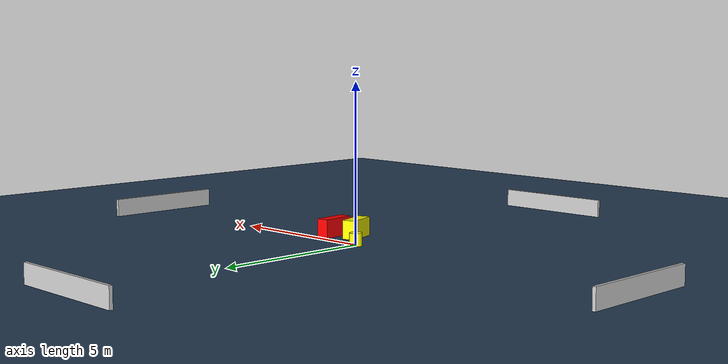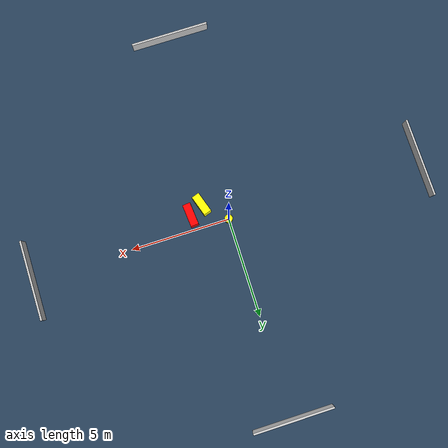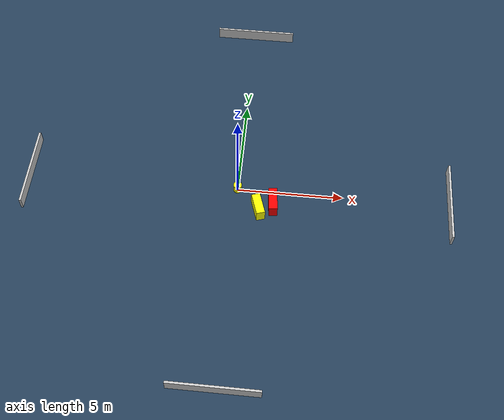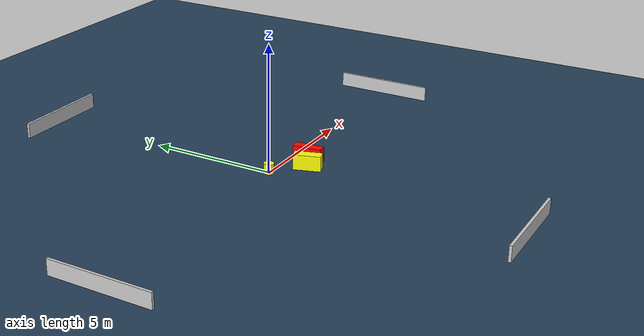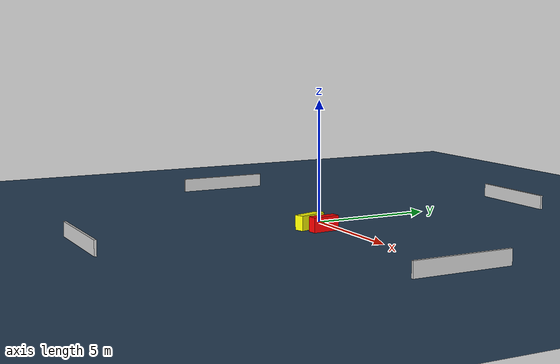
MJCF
<?xml version="1.0" ?>
<mujoco model="generated_environment">
  <option timestep="0.01" integrator="RK4" cone="elliptic"/>
  <default>
    <geom density="1"/>
  </default>
  <asset>
    <texture builtin="gradient" height="3072" name="skybox" rgb1="0.3 0.5 0.7" rgb2="0 0 0" type="skybox" width="512"/>
    <texture builtin="checker" height="300" name="groundplane" rgb1="0.2 0.3 0.4" rgb2="0.1 0.2 0.3" type="2d" width="300"/>
    <material name="groundplane" reflectance="0.2" texrepeat="5 5" texture="groundplane"/>
  </asset>
  <worldbody>
    <light dir="0 0 -1" directional="true" pos="0 0 1.5"/>
    <geom condim="3" friction="0.5 0.005 0.001" material="groundplane" name="floor" pos="0 0 0" size="0 0 0.05" type="plane"/>
    <body name="walls">
      <geom name="wall_1" condim="4" pos="-10.0 0.0 0.3" rgba="0.800000011920929 0.800000011920929 0.800000011920929 1.0" size="0.05 2.0 0.3" type="box"/>
      <geom name="wall_2" condim="4" pos="10.0 0.0 0.3" rgba="0.800000011920929 0.800000011920929 0.800000011920929 1.0" size="0.05 2.0 0.3" type="box"/>
      <geom name="wall_3" condim="4" pos="0.0 -10.0 0.3" rgba="0.800000011920929 0.800000011920929 0.800000011920929 1.0" size="2.0 0.05 0.3" type="box"/>
      <geom name="wall_4" condim="4" pos="0.0 10.0 0.3" rgba="0.800000011920929 0.800000011920929 0.800000011920929 1.0" size="2.0 0.05 0.3" type="box"/>
    </body>
    <body name="robot">
      <joint name="joint_x" type="slide" pos="0 0 0" axis="1 0 0"/>
      <joint name="joint_y" type="slide" pos="0 0 0" axis="0 1 0"/>
      <geom name="robot" type="cylinder" pos="0.0 0.0 0.2" size="0.2 0.2 0.0" mass="5.0" friction="1.0 0.005 0.0001" condim="4" rgba="1.0 1.0 0.0 1.0"/>
    </body>
    <body name="obstacle_1_movable">
      <geom name="obstacle_1_movable" condim="4" pos="1.064576601919337 -1.061230736684256 0.3" euler="0 0 107.90179664949638" friction="0.0 0.005 0.001" rgba="1.0 1.0 0.0 1.0" size="0.5308681413077694 0.20310076023184748 0.3" type="box" mass="0.1"/>
      <joint type="free"/>
    </body>
    <body name="obstacle_2_static">
      <geom name="obstacle_2_static" condim="4" pos="1.7312463362949928 -0.7224117796654165 0.3" euler="0 0 94.92913914009893" friction="0.0 0.005 0.001" rgba="1.0 0.0 0.0 1.0" size="0.5639928137194019 0.20035737856568328 0.3" type="box"/>
    </body>
  </worldbody>
  <actuator>
    <motor name="actuator_x" joint="joint_x" gear="1" ctrlrange="-1 1"/>
    <motor name="actuator_y" joint="joint_y" gear="1" ctrlrange="-1 1"/>
  </actuator>
</mujoco>
